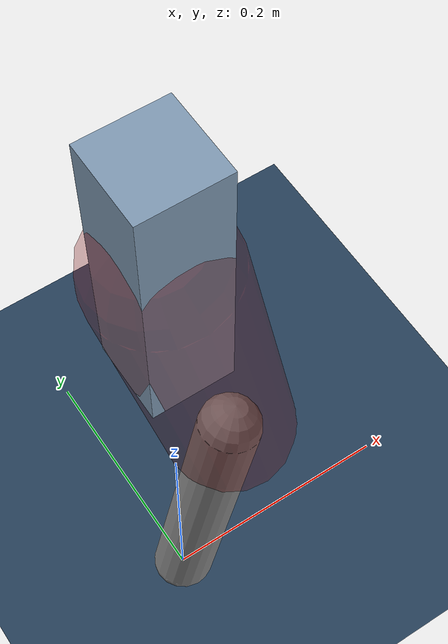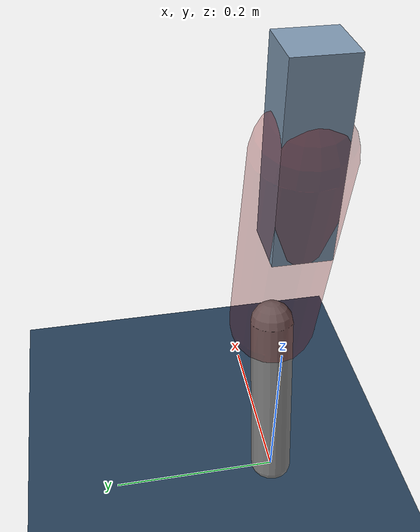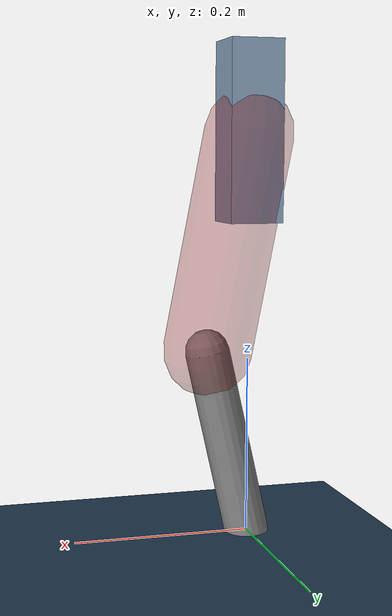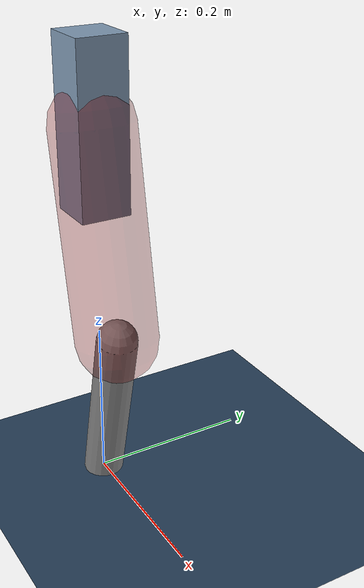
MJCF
<mujoco model="Hopper2D">
	<compiler inertiafromgeom="true" angle="radian" />
	<option timestep="0.001" integrator="implicit" cone="elliptic" solver="Newton" tolerance="1e-10" />

	<default>
		<geom contype="1" conaffinity="1" condim="3" friction="2 0.005 0.0001" solref="0.005 1" />
		<joint limited="true" damping="0.1" />
	</default>

	<asset>
		<texture name="skybox" type="skybox" builtin="gradient" rgb1=".4 .6 .8" rgb2="0 0 0" width="800" height="800" />
		<texture name="grid" type="2d" builtin="checker" rgb1=".1 .2 .3" rgb2=".2 .3 .4" width="300" height="300" mark="edge" markrgb=".2 .3 .4" />
		<material name="ground" texture="grid" texrepeat="1 1" texuniform="true" reflectance="0.1" />
		<material name="leg" rgba="0.5 0.6 0.7 1" />
	</asset>

	<worldbody>

		<geom name="floor" type="plane" size="5 5 0.25" material="ground" />

		<light directional="false" diffuse="0.8 0.8 0.8" specular="0.3 0.3 0.3" pos="0 0 2" dir="0 0 -1" />
		<light mode="targetbodycom" target="base" directional="false" diffuse="0.8 0.8 0.8" specular="0.3 0.3 0.3" pos="0 0 2" dir="0 0 -1" />

		<camera name="fixed" pos="0 -2 1" xyaxes="1 0 0 0 0 1" />
		<camera name="tracking" mode="trackcom" pos="0 -3 1" />

		<body name="root" pos="0 0 0.45500948749764747">
			<joint name="slide_x" type="slide" axis="1 0 0" range="-100 100" />
			<joint name="slide_z" type="slide" axis="0 0 1" range="0 10" />

			<body name="base" pos="0 0 0">
				<geom name="torso" type="box" size="0.03 0.03 0.1" mass="2.4779999999999998" material="leg" />

				<body name="link1" pos="0 0 0" euler="0 1.3778296200894489 0">
					<joint type="hinge" axis="0 -1 0" pos="0 0 0" name="hinge1" limited="true" range="-3.14 3.14" stiffness="0" damping="0.1" />
					<geom name="thigh" type="capsule" fromto="0 0 0 0.24939324168600369 0 0" size="0.05" rgba="0.5 0 0 0.3" mass="0.8548224283836096" />

					<body name="link2" pos="0.24939324168600369 0 0" euler="0 0.4166400990604508 0">
						<joint type="hinge" axis="0 -1 0" pos="0 0 0" name="hinge2" limited="true" range="-3.14 3.14" stiffness="0" damping="0.1" />
						<geom name="shank" type="capsule" fromto="0 0 0 0.2156162458116438 0 0" size="0.025" mass="0.41399299664931505" />

					</body>
				</body>
			</body>
		</body>
	</worldbody>

	<actuator>
		<motor name="torque1" joint="hinge1" ctrlrange="-54.22986935834774 54.22986935834774" ctrllimited="true" gear="1" />
		<motor name="torque2" joint="hinge2" ctrlrange="-63.188319276757234 63.188319276757234" ctrllimited="true" gear="1" />
	</actuator>
</mujoco>
